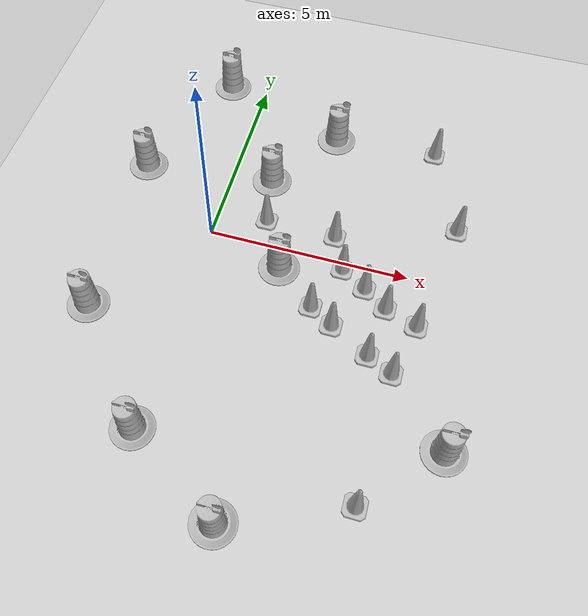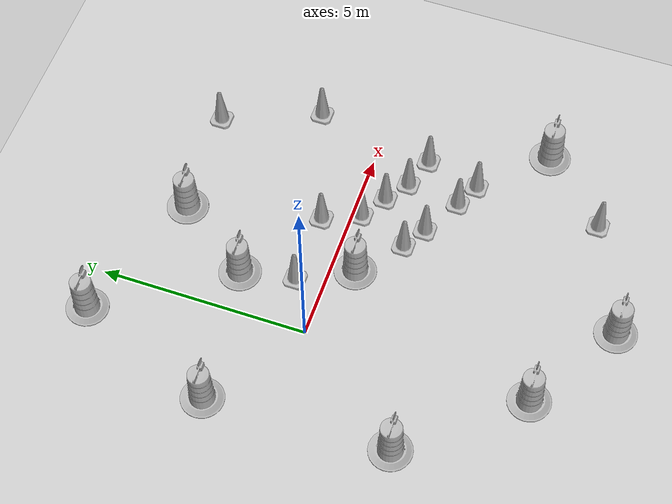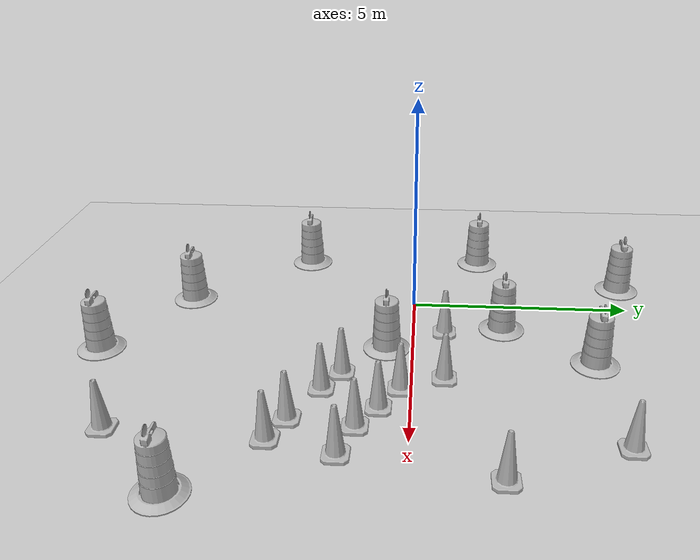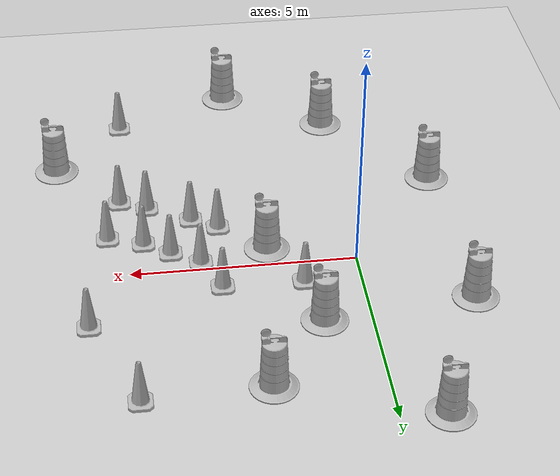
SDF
<sdf version="1.7">
 <world name="default">
  <light name="sun" type="directional">
   <pose>0 0 10 0 -0 0</pose>
   <diffuse>0.8 0.8 0.8 1</diffuse>
   <specular>0.2 0.2 0.2 1</specular>
   <attenuation>
    <range>1000</range>
    <constant>0.9</constant>
    <linear>0.01</linear>
    <quadratic>0.001</quadratic>
   </attenuation>
   <direction>-0.5 0.1 -0.9</direction>
   <spot><inner_angle>0</inner_angle><outer_angle>0</outer_angle><falloff>0</falloff></spot>
  </light>
  <model name="ground_plane">
   <static>1</static>
   <link name="link">
    <collision name="collision">
     <geometry><plane><normal>0 0 1</normal><size>100 100</size></plane></geometry>
     <surface><friction><ode><mu>100</mu><mu2>50</mu2></ode></friction></surface>
    </collision>
    <visual name="visual">
     <cast_shadows>0</cast_shadows>
     <geometry><plane><normal>0 0 1</normal><size>100 100</size></plane></geometry>
     <material>
      <script><uri>file://media/materials/scripts/gazebo.material</uri><name>Gazebo/Grey</name></script>
     </material>
    </visual>
   </link>
  </model>
  <gravity>0 0 -9.8</gravity>
  <magnetic_field>6e-06 2.3e-05 -4.2e-05</magnetic_field>
  <atmosphere type="adiabatic"/>
  <physics type="ode">
   <max_step_size>0.001</max_step_size>
   <real_time_factor>1</real_time_factor>
   <real_time_update_rate>1000</real_time_update_rate>
  </physics>
  <scene><ambient>0.4 0.4 0.4 1</ambient><background>0.7 0.7 0.7 1</background><shadows>1</shadows></scene>
  <audio><device>default</device></audio>
  <spherical_coordinates>
   <surface_model>EARTH_WGS84</surface_model>
   <latitude_deg>0</latitude_deg>
   <longitude_deg>0</longitude_deg>
   <elevation>0</elevation>
   <heading_deg>0</heading_deg>
  </spherical_coordinates>
  <model name="Construction Cone">
   <link name="link">
    <collision name="collision">
     <geometry>
      <mesh><scale>10 10 10</scale><uri>model://construction_cone/meshes/construction_cone.dae</uri></mesh>
     </geometry>
    </collision>
    <visual name="visual">
     <geometry>
      <mesh><scale>10 10 10</scale><uri>model://construction_cone/meshes/construction_cone.dae</uri></mesh>
     </geometry>
    </visual>
    <inertial>
     <inertia><ixx>1</ixx><ixy>0</ixy><ixz>0</ixz><iyy>1</iyy><iyz>0</iyz><izz>1</izz></inertia>
     <mass>1</mass>
    </inertial>
   </link>
   <pose>1.25993 0.696625 -5e-06 -4e-06 1e-06 0</pose>
  </model>
  <model name="Construction Cone_0">
   <link name="link">
    <collision name="collision">
     <geometry>
      <mesh><scale>10 10 10</scale><uri>model://construction_cone/meshes/construction_cone.dae</uri></mesh>
     </geometry>
    </collision>
    <visual name="visual">
     <geometry>
      <mesh><scale>10 10 10</scale><uri>model://construction_cone/meshes/construction_cone.dae</uri></mesh>
     </geometry>
    </visual>
    <inertial>
     <inertia><ixx>1</ixx><ixy>0</ixy><ixz>0</ixz><iyy>1</iyy><iyz>0</iyz><izz>1</izz></inertia>
     <mass>1</mass>
    </inertial>
   </link>
   <pose>3.0353 0.67029 -4e-06 4e-06 -1e-06 0</pose>
  </model>
  <model name="Construction Barrel_clone">
   <link name="link">
    <inertial>
     <pose>0 0 0.4 0 -0 0</pose>
     <mass>500</mass>
     <inertia><ixx>51.2096</ixx><iyy>51.2096</iyy><izz>25</izz><ixy>0</ixy><ixz>0</ixz><iyz>0</iyz></inertia>
    </inertial>
    <collision name="collision">
     <geometry><mesh><uri>model://construction_barrel/meshes/construction_barrel.dae</uri></mesh></geometry>
    </collision>
    <visual name="visual">
     <geometry><mesh><uri>model://construction_barrel/meshes/construction_barrel.dae</uri></mesh></geometry>
    </visual>
   </link>
   <pose>-0.006492 -5.33532 -1e-06 3e-06 7e-06 -3e-05</pose>
  </model>
  <model name="Construction Barrel_clone_0">
   <link name="link">
    <inertial>
     <pose>0 0 0.4 0 -0 0</pose>
     <mass>500</mass>
     <inertia><ixx>51.2096</ixx><iyy>51.2096</iyy><izz>25</izz><ixy>0</ixy><ixz>0</ixz><iyz>0</iyz></inertia>
    </inertial>
    <collision name="collision">
     <geometry><mesh><uri>model://construction_barrel/meshes/construction_barrel.dae</uri></mesh></geometry>
    </collision>
    <visual name="visual">
     <geometry><mesh><uri>model://construction_barrel/meshes/construction_barrel.dae</uri></mesh></geometry>
    </visual>
   </link>
   <pose>-2.1466 -2.76899 -0 0 -0 -3.4e-05</pose>
  </model>
  <model name="Construction Barrel_clone_1">
   <link name="link">
    <inertial>
     <pose>0 0 0.4 0 -0 0</pose>
     <mass>500</mass>
     <inertia><ixx>51.2096</ixx><iyy>51.2096</iyy><izz>25</izz><ixy>0</ixy><ixz>0</ixz><iyz>0</iyz></inertia>
    </inertial>
    <collision name="collision">
     <geometry><mesh><uri>model://construction_barrel/meshes/construction_barrel.dae</uri></mesh></geometry>
    </collision>
    <visual name="visual">
     <geometry><mesh><uri>model://construction_barrel/meshes/construction_barrel.dae</uri></mesh></geometry>
    </visual>
   </link>
   <pose>-1.00012 4.99995 -0 0 0 -3.2e-05</pose>
  </model>
  <model name="Construction Barrel_clone_2">
   <link name="link">
    <inertial>
     <pose>0 0 0.4 0 -0 0</pose>
     <mass>500</mass>
     <inertia><ixx>51.2096</ixx><iyy>51.2096</iyy><izz>25</izz><ixy>0</ixy><ixz>0</ixz><iyz>0</iyz></inertia>
    </inertial>
    <collision name="collision">
     <geometry><mesh><uri>model://construction_barrel/meshes/construction_barrel.dae</uri></mesh></geometry>
    </collision>
    <visual name="visual">
     <geometry><mesh><uri>model://construction_barrel/meshes/construction_barrel.dae</uri></mesh></geometry>
    </visual>
   </link>
   <pose>-2.30008 1.61546 -1e-06 3e-06 7e-06 -3.5e-05</pose>
  </model>
  <model name="Construction Barrel_clone_3">
   <link name="link">
    <inertial>
     <pose>0 0 0.4 0 -0 0</pose>
     <mass>500</mass>
     <inertia><ixx>51.2096</ixx><iyy>51.2096</iyy><izz>25</izz><ixy>0</ixy><ixz>0</ixz><iyz>0</iyz></inertia>
    </inertial>
    <collision name="collision">
     <geometry><mesh><uri>model://construction_barrel/meshes/construction_barrel.dae</uri></mesh></geometry>
    </collision>
    <visual name="visual">
     <geometry><mesh><uri>model://construction_barrel/meshes/construction_barrel.dae</uri></mesh></geometry>
    </visual>
   </link>
   <pose>2.33219 3.84147 -1e-06 3e-06 7e-06 -3.3e-05</pose>
  </model>
  <model name="Construction Cone_0_clone_0">
   <link name="link">
    <collision name="collision">
     <geometry>
      <mesh><scale>10 10 10</scale><uri>model://construction_cone/meshes/construction_cone.dae</uri></mesh>
     </geometry>
    </collision>
    <visual name="visual">
     <geometry>
      <mesh><scale>10 10 10</scale><uri>model://construction_cone/meshes/construction_cone.dae</uri></mesh>
     </geometry>
    </visual>
    <inertial>
     <inertia><ixx>1</ixx><ixy>0</ixy><ixz>0</ixz><iyy>1</iyy><iyz>0</iyz><izz>1</izz></inertia>
     <mass>1</mass>
    </inertial>
   </link>
   <pose>5.43019 -1.26878 -6e-06 -4e-06 0 0</pose>
  </model>
  <model name="Construction Cone_0_clone_1">
   <link name="link">
    <collision name="collision">
     <geometry>
      <mesh><scale>10 10 10</scale><uri>model://construction_cone/meshes/construction_cone.dae</uri></mesh>
     </geometry>
    </collision>
    <visual name="visual">
     <geometry>
      <mesh><scale>10 10 10</scale><uri>model://construction_cone/meshes/construction_cone.dae</uri></mesh>
     </geometry>
    </visual>
    <inertial>
     <inertia><ixx>1</ixx><ixy>0</ixy><ixz>0</ixz><iyy>1</iyy><iyz>0</iyz><izz>1</izz></inertia>
     <mass>1</mass>
    </inertial>
   </link>
   <pose>5 4 -0 0 -1e-06 0</pose>
  </model>
  <model name="Construction Cone_0_clone_2">
   <link name="link">
    <collision name="collision">
     <geometry>
      <mesh><scale>10 10 10</scale><uri>model://construction_cone/meshes/construction_cone.dae</uri></mesh>
     </geometry>
    </collision>
    <visual name="visual">
     <geometry>
      <mesh><scale>10 10 10</scale><uri>model://construction_cone/meshes/construction_cone.dae</uri></mesh>
     </geometry>
    </visual>
    <inertial>
     <inertia><ixx>1</ixx><ixy>0</ixy><ixz>0</ixz><iyy>1</iyy><iyz>0</iyz><izz>1</izz></inertia>
     <mass>1</mass>
    </inertial>
   </link>
   <pose>5.9397 1.67367 -0 0 -0 0</pose>
  </model>
  <model name="Construction Cone_0_clone_3">
   <link name="link">
    <collision name="collision">
     <geometry>
      <mesh><scale>10 10 10</scale><uri>model://construction_cone/meshes/construction_cone.dae</uri></mesh>
     </geometry>
    </collision>
    <visual name="visual">
     <geometry>
      <mesh><scale>10 10 10</scale><uri>model://construction_cone/meshes/construction_cone.dae</uri></mesh>
     </geometry>
    </visual>
    <inertial>
     <inertia><ixx>1</ixx><ixy>0</ixy><ixz>0</ixz><iyy>1</iyy><iyz>0</iyz><izz>1</izz></inertia>
     <mass>1</mass>
    </inertial>
   </link>
   <pose>4.95431 -5.65664 -3e-06 -3e-06 -1e-06 -0</pose>
  </model>
  <model name="Construction Barrel_clone_3_clone">
   <link name="link">
    <inertial>
     <pose>0 0 0.4 0 -0 0</pose>
     <mass>500</mass>
     <inertia><ixx>51.2096</ixx><iyy>51.2096</iyy><izz>25</izz><ixy>0</ixy><ixz>0</ixz><iyz>0</iyz></inertia>
    </inertial>
    <collision name="collision">
     <geometry><mesh><uri>model://construction_barrel/meshes/construction_barrel.dae</uri></mesh></geometry>
    </collision>
    <visual name="visual">
     <geometry><mesh><uri>model://construction_barrel/meshes/construction_barrel.dae</uri></mesh></geometry>
    </visual>
   </link>
   <pose>6.51596 -4.04804 -1e-06 2e-06 -1e-06 -2.9e-05</pose>
  </model>
  <model name="Construction Barrel_clone_3_clone_0">
   <link name="link">
    <inertial>
     <pose>0 0 0.4 0 -0 0</pose>
     <mass>500</mass>
     <inertia><ixx>51.2096</ixx><iyy>51.2096</iyy><izz>25</izz><ixy>0</ixy><ixz>0</ixz><iyz>0</iyz></inertia>
    </inertial>
    <collision name="collision">
     <geometry><mesh><uri>model://construction_barrel/meshes/construction_barrel.dae</uri></mesh></geometry>
    </collision>
    <visual name="visual">
     <geometry><mesh><uri>model://construction_barrel/meshes/construction_barrel.dae</uri></mesh></geometry>
    </visual>
   </link>
   <pose>2.29004 -6.75309 -1e-06 2e-06 -1e-06 -2.8e-05</pose>
  </model>
  <model name="Construction Cone_0_clone_4">
   <link name="link">
    <collision name="collision">
     <geometry>
      <mesh><scale>10 10 10</scale><uri>model://construction_cone/meshes/construction_cone.dae</uri></mesh>
     </geometry>
    </collision>
    <visual name="visual">
     <geometry>
      <mesh><scale>10 10 10</scale><uri>model://construction_cone/meshes/construction_cone.dae</uri></mesh>
     </geometry>
    </visual>
    <inertial>
     <inertia><ixx>1</ixx><ixy>0</ixy><ixz>0</ixz><iyy>1</iyy><iyz>0</iyz><izz>1</izz></inertia>
     <mass>1</mass>
    </inertial>
   </link>
   <pose>3.42737 -0.20746 -0 0 -1e-06 0</pose>
  </model>
  <model name="Construction Cone_0_clone_5">
   <link name="link">
    <collision name="collision">
     <geometry>
      <mesh><scale>10 10 10</scale><uri>model://construction_cone/meshes/construction_cone.dae</uri></mesh>
     </geometry>
    </collision>
    <visual name="visual">
     <geometry>
      <mesh><scale>10 10 10</scale><uri>model://construction_cone/meshes/construction_cone.dae</uri></mesh>
     </geometry>
    </visual>
    <inertial>
     <inertia><ixx>1</ixx><ixy>0</ixy><ixz>0</ixz><iyy>1</iyy><iyz>0</iyz><izz>1</izz></inertia>
     <mass>1</mass>
    </inertial>
   </link>
   <pose>4.06308 -0.603415 -6e-06 -4e-06 0 0</pose>
  </model>
  <model name="Construction Cone_0_clone_6">
   <link name="link">
    <collision name="collision">
     <geometry>
      <mesh><scale>10 10 10</scale><uri>model://construction_cone/meshes/construction_cone.dae</uri></mesh>
     </geometry>
    </collision>
    <visual name="visual">
     <geometry>
      <mesh><scale>10 10 10</scale><uri>model://construction_cone/meshes/construction_cone.dae</uri></mesh>
     </geometry>
    </visual>
    <inertial>
     <inertia><ixx>1</ixx><ixy>0</ixy><ixz>0</ixz><iyy>1</iyy><iyz>0</iyz><izz>1</izz></inertia>
     <mass>1</mass>
    </inertial>
   </link>
   <pose>4.64335 -1.0023 -1e-06 1e-06 -2e-06 -0</pose>
  </model>
  <model name="Construction Cone_0_clone_7">
   <link name="link">
    <collision name="collision">
     <geometry>
      <mesh><scale>10 10 10</scale><uri>model://construction_cone/meshes/construction_cone.dae</uri></mesh>
     </geometry>
    </collision>
    <visual name="visual">
     <geometry>
      <mesh><scale>10 10 10</scale><uri>model://construction_cone/meshes/construction_cone.dae</uri></mesh>
     </geometry>
    </visual>
    <inertial>
     <inertia><ixx>1</ixx><ixy>0</ixy><ixz>0</ixz><iyy>1</iyy><iyz>0</iyz><izz>1</izz></inertia>
     <mass>1</mass>
    </inertial>
   </link>
   <pose>4.48673 -2.30095 -5e-06 -4e-06 1e-06 0</pose>
  </model>
  <model name="Construction Cone_0_clone_clone">
   <link name="link">
    <collision name="collision">
     <geometry>
      <mesh><scale>10 10 10</scale><uri>model://construction_cone/meshes/construction_cone.dae</uri></mesh>
     </geometry>
    </collision>
    <visual name="visual">
     <geometry>
      <mesh><scale>10 10 10</scale><uri>model://construction_cone/meshes/construction_cone.dae</uri></mesh>
     </geometry>
    </visual>
    <inertial>
     <inertia><ixx>1</ixx><ixy>0</ixy><ixz>0</ixz><iyy>1</iyy><iyz>0</iyz><izz>1</izz></inertia>
     <mass>1</mass>
    </inertial>
   </link>
   <pose>3.52021 -1.77575 -0 0 -0 0</pose>
  </model>
  <model name="Construction Cone_0_clone_clone_0">
   <link name="link">
    <collision name="collision">
     <geometry>
      <mesh><scale>10 10 10</scale><uri>model://construction_cone/meshes/construction_cone.dae</uri></mesh>
     </geometry>
    </collision>
    <visual name="visual">
     <geometry>
      <mesh><scale>10 10 10</scale><uri>model://construction_cone/meshes/construction_cone.dae</uri></mesh>
     </geometry>
    </visual>
    <inertial>
     <inertia><ixx>1</ixx><ixy>0</ixy><ixz>0</ixz><iyy>1</iyy><iyz>0</iyz><izz>1</izz></inertia>
     <mass>1</mass>
    </inertial>
   </link>
   <pose>2.9398 -1.42323 -0 0 -1e-06 0</pose>
  </model>
  <model name="Construction Cone_0_clone_clone_1">
   <link name="link">
    <collision name="collision">
     <geometry>
      <mesh><scale>10 10 10</scale><uri>model://construction_cone/meshes/construction_cone.dae</uri></mesh>
     </geometry>
    </collision>
    <visual name="visual">
     <geometry>
      <mesh><scale>10 10 10</scale><uri>model://construction_cone/meshes/construction_cone.dae</uri></mesh>
     </geometry>
    </visual>
    <inertial>
     <inertia><ixx>1</ixx><ixy>0</ixy><ixz>0</ixz><iyy>1</iyy><iyz>0</iyz><izz>1</izz></inertia>
     <mass>1</mass>
    </inertial>
   </link>
   <pose>5.09629 -2.59305 -0 0 -0 0</pose>
  </model>
  <model name="Construction Barrel_clone_3_clone_1">
   <link name="link">
    <inertial>
     <pose>0 0 0.4 0 -0 0</pose>
     <mass>500</mass>
     <inertia><ixx>51.2096</ixx><iyy>51.2096</iyy><izz>25</izz><ixy>0</ixy><ixz>0</ixz><iyz>0</iyz></inertia>
    </inertial>
    <collision name="collision">
     <geometry><mesh><uri>model://construction_barrel/meshes/construction_barrel.dae</uri></mesh></geometry>
    </collision>
    <visual name="visual">
     <geometry><mesh><uri>model://construction_barrel/meshes/construction_barrel.dae</uri></mesh></geometry>
    </visual>
   </link>
   <pose>1.92823 -0.562205 -4e-06 -5e-06 -7e-06 -3.4e-05</pose>
  </model>
  <model name="Construction Barrel_clone_3_clone_2">
   <link name="link">
    <inertial>
     <pose>0 0 0.4 0 -0 0</pose>
     <mass>500</mass>
     <inertia><ixx>51.2096</ixx><iyy>51.2096</iyy><izz>25</izz><ixy>0</ixy><ixz>0</ixz><iyz>0</iyz></inertia>
    </inertial>
    <collision name="collision">
     <geometry><mesh><uri>model://construction_barrel/meshes/construction_barrel.dae</uri></mesh></geometry>
    </collision>
    <visual name="visual">
     <geometry><mesh><uri>model://construction_barrel/meshes/construction_barrel.dae</uri></mesh></geometry>
    </visual>
   </link>
   <pose>1.02268 1.99048 -4e-06 -5e-06 -7e-06 -3.3e-05</pose>
  </model>
 </world>
</sdf>
